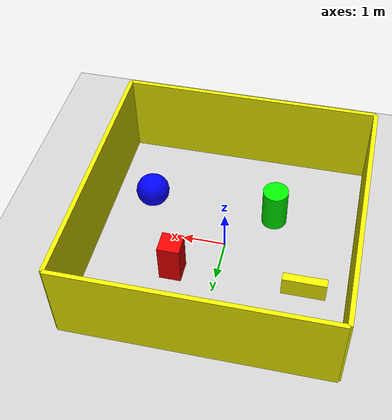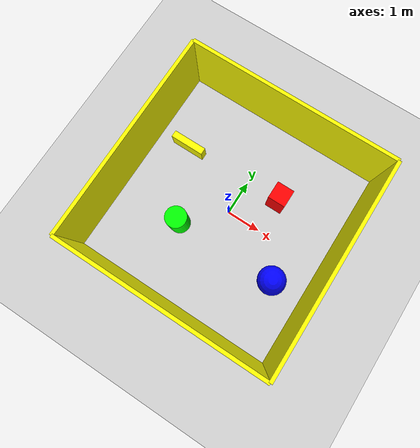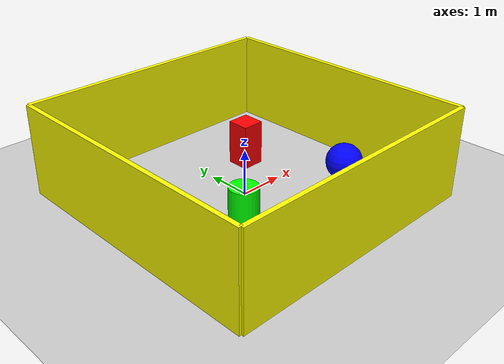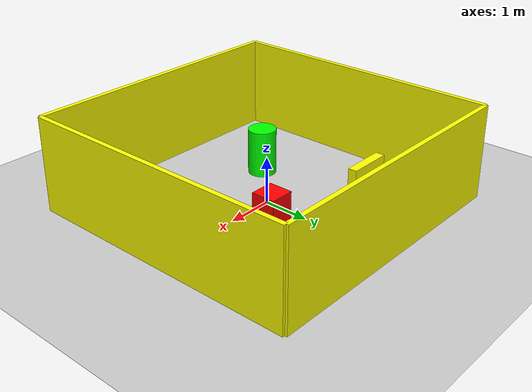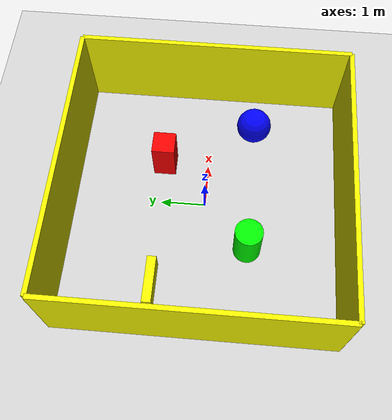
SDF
<?xml version="1.0"?>
<sdf version="1.6">
    <world name="default">

        <!-- Include Ground Plane -->
        <include>
            <uri>model://ground_plane</uri>
        </include>

        <!-- Include Sun -->
        <include>
            <uri>model://sun</uri>
        </include>

        <physics type="ode">
            <real_time_update_rate>100</real_time_update_rate>
            <max_step_size>0.01</max_step_size>
            <real_time_factor>1</real_time_factor>
        </physics>

        <!-- Obstacle 1 -->
        <model name="obstacle_1">
            <pose>1 1 0.5 0 0 0</pose>
            <static>true</static>
            <link name="link">
                <visual name="visual">
                    <geometry>
                        <box>
                            <size>0.5 0.5 1.0</size>
                        </box>
                    </geometry>
                    <material>
                        <ambient>1 0 0 1</ambient>
                    </material>
                </visual>
                <collision name="collision">
                    <geometry>
                        <box>
                            <size>0.5 0.5 1.0</size>
                        </box>
                    </geometry>
                </collision>
            </link>
        </model>

        <model name="wall_front">
            <pose>0 3 1 0 0 0</pose>
            <static>true</static>
            <link name="link">
                <visual name="visual">
                <geometry>
                    <box>
                    <size>6 0.1 2</size>
                    </box>
                </geometry>
                <material>
                    <ambient>1 1 0 0</ambient>
                </material>
                </visual>
                <collision name="collision">
                    <geometry>
                        <box>
                            <size>6 0.1 2</size>
                        </box>
                    </geometry>
                </collision>
            </link>
        </model>

        <model name="wall_back">
            <pose>0 -3 1 0 0 0</pose>
            <static>true</static>
            <link name="link">
                <visual name="visual">
                <geometry>
                    <box>
                    <size>6 0.1 2</size>
                    </box>
                </geometry>
                <material>
                    <ambient>1 1 0 0</ambient>
                </material>
                </visual>
                <collision name="collision">
                    <geometry>
                        <box>
                            <size>6 0.1 2</size>
                        </box>
                    </geometry>
                </collision>
            </link>
        </model>

        <model name="wall_left">
            <pose>-3 0 1 0 0 0</pose>
            <static>true</static>
            <link name="link">
                <visual name="visual">
                <geometry>
                    <box>
                        <size>0.1 6 2</size>
                    </box>
                </geometry>
                <material>
                    <ambient>1 1 0 0</ambient>
                </material>
                </visual>
                <collision name="collision">
                    <geometry>
                        <box>
                            <size>0.1 6 2</size>
                        </box>
                    </geometry>
                </collision>
            </link>
        </model>

        <model name="wall_right">
            <pose>3 0 1 0 0 0</pose>
            <static>true</static>
            <link name="link">
                <visual name="visual">
                <geometry>
                    <box>
                        <size>0.1 6 2</size>
                    </box>
                </geometry>
                <material>
                    <ambient>1 1 0 0</ambient>
                </material>
                </visual>
                <collision name="collision">
                    <geometry>
                        <box>
                            <size>0.1 6 2</size>
                        </box>
                    </geometry>
                </collision>
            </link>
        </model>

        <!-- Obstacle 2 -->
        <model name="obstacle_2">
            <pose>-1 -1 0.5 0 0 0</pose>
            <static>true</static>
            <link name="link">
                <visual name="visual">
                <geometry>
                    <cylinder>
                    <radius>0.3</radius>
                    <length>1.0</length>
                 </cylinder>
                </geometry>
                <material>
                    <ambient>0 1 0 1</ambient>
                </material>
                </visual>
                <collision name="collision">
                    <geometry>
                        <cylinder>
                            <radius>0.3</radius>
                            <length>1.0</length>
                        </cylinder>
                    </geometry>
                </collision>
            </link>
        </model>

        <!-- Obstacle 3 -->
        <model name="obstacle_3">
            <pose>2 -1 0.4 0 0 0</pose>
            <static>true</static>
            <link name="link">
                <visual name="visual">
                <geometry>
                    <sphere>
                        <radius>0.4</radius>
                    </sphere>
                </geometry>
                <material>
                    <ambient>0 0 1 1</ambient>
                </material>
                </visual>
                <collision name="collision">
                    <geometry>
                        <sphere>
                            <radius>0.4</radius>
                        </sphere>
                    </geometry>
                </collision>
            </link>
            </model>

        <!-- Obstacle 4 -->
        <model name="obstacle_4">
            <pose>-2 1 0.25 0 0 0</pose>
            <static>true</static>
            <link name="link">
                <visual name="visual">
                <geometry>
                    <box>
                        <size>1.0 0.2 0.5</size>
                    </box>
                </geometry>
                <material>
                    <ambient>1 1 0 1</ambient>
                </material>
                </visual>
                <collision name="collision">
                    <geometry>
                        <box>
                            <size>1.0 0.2 0.5</size>
                        </box>
                    </geometry>
                </collision>
            </link>
        </model>
    </world>

</sdf>
